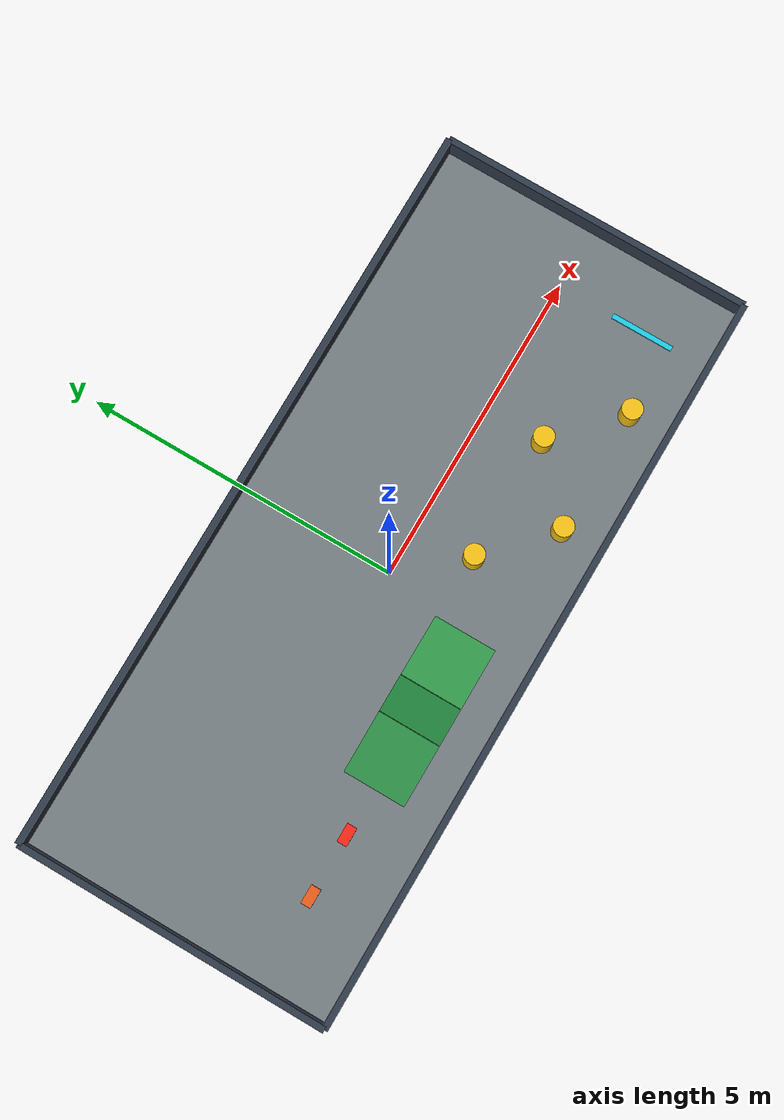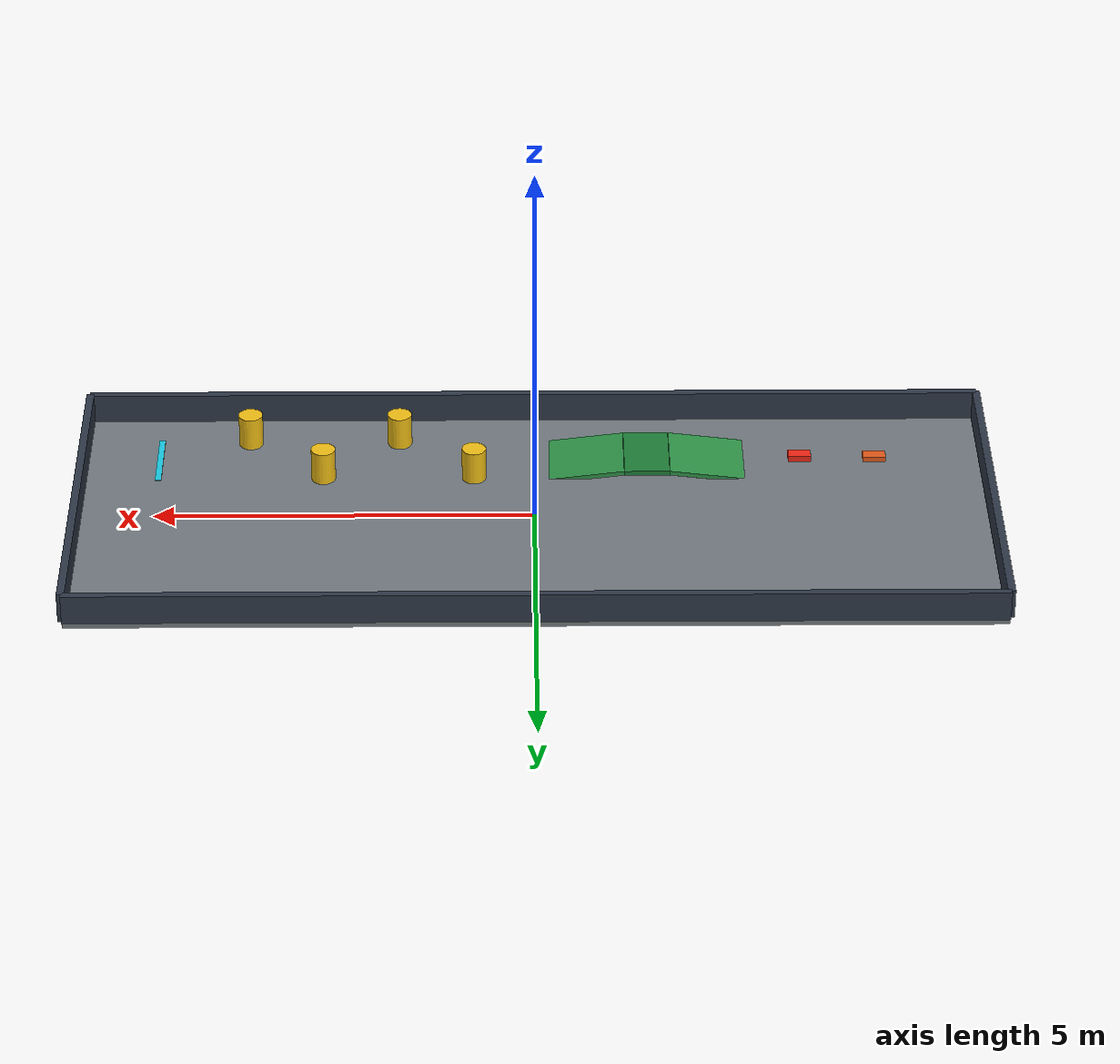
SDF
<?xml version="1.0"?>
<sdf version="1.10">
  <world name="hexapod_training_course">
    <physics name="default" type="ignored">
      <max_step_size>0.001</max_step_size>
      <real_time_factor>1.0</real_time_factor>
    </physics>
    <gravity>0 0 -9.80665</gravity>
    <plugin filename="gz-sim-physics-system" name="gz::sim::systems::Physics"/>
    <plugin filename="gz-sim-user-commands-system" name="gz::sim::systems::UserCommands"/>
    <plugin filename="gz-sim-scene-broadcaster-system" name="gz::sim::systems::SceneBroadcaster"/>
    <plugin filename="gz-sim-sensors-system" name="gz::sim::systems::Sensors">
      <render_engine>ogre2</render_engine>
    </plugin>
    <plugin filename="gz-sim-imu-system" name="gz::sim::systems::Imu"/>
    <!-- Contact system: needed for the six foot contact sensors (limit-switch emulation) in hexapod_description -->
    <plugin filename="gz-sim-contact-system" name="gz::sim::systems::Contact"/>
    <!-- ForceTorque system: joint torque sensors (use_joint_ft in hexapod_description, CoT in hexapod_evaluation) -->
    <plugin filename="gz-sim-forcetorque-system" name="gz::sim::systems::ForceTorque"/>

    <scene>
      <ambient>0.55 0.55 0.55 1</ambient>
      <background>0.72 0.82 0.92 1</background>
      <shadows>true</shadows>
    </scene>
    <light name="sun" type="directional">
      <pose>0 0 10 0 0 0</pose>
      <cast_shadows>true</cast_shadows>
      <direction>-0.4 0.2 -0.9</direction>
      <diffuse>0.9 0.9 0.9 1</diffuse>
    </light>

    <!-- The box is centred at z=-0.05, keeping its top surface at z=0. -->
    <model name="ground">
      <static>true</static>
      <pose>0 0 -0.05 0 0 0</pose>
      <link name="link">
        <collision name="collision">
          <geometry><box><size>12 5 0.1</size></box></geometry>
          <surface><friction><ode><mu>1.0</mu><mu2>1.0</mu2></ode></friction></surface>
        </collision>
        <visual name="visual">
          <geometry><box><size>12 5 0.1</size></box></geometry>
          <material><diffuse>0.45 0.48 0.50 1</diffuse></material>
        </visual>
      </link>
    </model>

    <model name="boundary_walls">
      <static>true</static>
      <link name="walls">
        <collision name="north"><pose>0 2.5 0.2 0 0 0</pose><geometry><box><size>12 0.1 0.4</size></box></geometry></collision>
        <visual name="north_visual"><pose>0 2.5 0.2 0 0 0</pose><geometry><box><size>12 0.1 0.4</size></box></geometry><material><diffuse>0.18 0.22 0.28 1</diffuse></material></visual>
        <collision name="south"><pose>0 -2.5 0.2 0 0 0</pose><geometry><box><size>12 0.1 0.4</size></box></geometry></collision>
        <visual name="south_visual"><pose>0 -2.5 0.2 0 0 0</pose><geometry><box><size>12 0.1 0.4</size></box></geometry><material><diffuse>0.18 0.22 0.28 1</diffuse></material></visual>
        <collision name="east"><pose>6 0 0.2 0 0 0</pose><geometry><box><size>0.1 5 0.4</size></box></geometry></collision>
        <visual name="east_visual"><pose>6 0 0.2 0 0 0</pose><geometry><box><size>0.1 5 0.4</size></box></geometry><material><diffuse>0.18 0.22 0.28 1</diffuse></material></visual>
        <collision name="west"><pose>-6 0 0.2 0 0 0</pose><geometry><box><size>0.1 5 0.4</size></box></geometry></collision>
        <visual name="west_visual"><pose>-6 0 0.2 0 0 0</pose><geometry><box><size>0.1 5 0.4</size></box></geometry><material><diffuse>0.18 0.22 0.28 1</diffuse></material></visual>
      </link>
    </model>

    <!-- Narrow centre obstacles pass between the feet and test body clearance. -->
    <model name="body_clearance_boxes">
      <static>true</static>
      <link name="boxes">
        <collision name="box_75mm"><pose>-4.55 -1.4 0.0375 0 0 0</pose><geometry><box><size>0.30 0.16 0.075</size></box></geometry></collision>
        <visual name="box_75mm_visual"><pose>-4.55 -1.4 0.0375 0 0 0</pose><geometry><box><size>0.30 0.16 0.075</size></box></geometry><material><diffuse>0.90 0.35 0.10 1</diffuse></material></visual>
        <collision name="box_90mm"><pose>-3.55 -1.4 0.045 0 0 0</pose><geometry><box><size>0.30 0.16 0.09</size></box></geometry></collision>
        <visual name="box_90mm_visual"><pose>-3.55 -1.4 0.045 0 0 0</pose><geometry><box><size>0.30 0.16 0.09</size></box></geometry><material><diffuse>0.95 0.15 0.08 1</diffuse></material></visual>
      </link>
    </model>

    <!-- 1 m ramps rise 0.12 m (6.84 degrees), with a 0.6 m top platform. -->
    <model name="slope_module">
      <static>true</static>
      <link name="ramps">
        <collision name="ramp_up"><pose>-2.3 -1.4 0.0302 0 -0.11943 0</pose><geometry><box><size>1.0 1.0 0.06</size></box></geometry><surface><friction><ode><mu>1.2</mu><mu2>1.2</mu2></ode></friction></surface></collision>
        <visual name="ramp_up_visual"><pose>-2.3 -1.4 0.0302 0 -0.11943 0</pose><geometry><box><size>1.0 1.0 0.06</size></box></geometry><material><diffuse>0.18 0.58 0.28 1</diffuse></material></visual>
        <collision name="platform"><pose>-1.5 -1.4 0.09 0 0 0</pose><geometry><box><size>0.6 1.0 0.06</size></box></geometry><surface><friction><ode><mu>1.2</mu><mu2>1.2</mu2></ode></friction></surface></collision>
        <visual name="platform_visual"><pose>-1.5 -1.4 0.09 0 0 0</pose><geometry><box><size>0.6 1.0 0.06</size></box></geometry><material><diffuse>0.12 0.50 0.22 1</diffuse></material></visual>
        <collision name="ramp_down"><pose>-0.7 -1.4 0.0302 0 0.11943 0</pose><geometry><box><size>1.0 1.0 0.06</size></box></geometry><surface><friction><ode><mu>1.2</mu><mu2>1.2</mu2></ode></friction></surface></collision>
        <visual name="ramp_down_visual"><pose>-0.7 -1.4 0.0302 0 0.11943 0</pose><geometry><box><size>1.0 1.0 0.06</size></box></geometry><material><diffuse>0.18 0.58 0.28 1</diffuse></material></visual>
      </link>
    </model>

    <!-- Alternating pylons form a compact slalom after the slope. -->
    <model name="zigzag_pylons">
      <static>true</static>
      <link name="pylons">
        <collision name="pylon_1"><pose>0.8 -0.95 0.225 0 0 0</pose><geometry><cylinder><radius>0.16</radius><length>0.45</length></cylinder></geometry></collision>
        <visual name="pylon_1_visual"><pose>0.8 -0.95 0.225 0 0 0</pose><geometry><cylinder><radius>0.16</radius><length>0.45</length></cylinder></geometry><material><diffuse>0.95 0.75 0.08 1</diffuse></material></visual>
        <collision name="pylon_2"><pose>1.8 -1.85 0.225 0 0 0</pose><geometry><cylinder><radius>0.16</radius><length>0.45</length></cylinder></geometry></collision>
        <visual name="pylon_2_visual"><pose>1.8 -1.85 0.225 0 0 0</pose><geometry><cylinder><radius>0.16</radius><length>0.45</length></cylinder></geometry><material><diffuse>0.95 0.75 0.08 1</diffuse></material></visual>
        <collision name="pylon_3"><pose>2.8 -0.95 0.225 0 0 0</pose><geometry><cylinder><radius>0.16</radius><length>0.45</length></cylinder></geometry></collision>
        <visual name="pylon_3_visual"><pose>2.8 -0.95 0.225 0 0 0</pose><geometry><cylinder><radius>0.16</radius><length>0.45</length></cylinder></geometry><material><diffuse>0.95 0.75 0.08 1</diffuse></material></visual>
        <collision name="pylon_4"><pose>3.8 -1.85 0.225 0 0 0</pose><geometry><cylinder><radius>0.16</radius><length>0.45</length></cylinder></geometry></collision>
        <visual name="pylon_4_visual"><pose>3.8 -1.85 0.225 0 0 0</pose><geometry><cylinder><radius>0.16</radius><length>0.45</length></cylinder></geometry><material><diffuse>0.95 0.75 0.08 1</diffuse></material></visual>
      </link>
    </model>

    <model name="finish_marker">
      <static>true</static>
      <pose>5.0 -1.4 0.01 0 0 0</pose>
      <link name="link">
        <visual name="visual"><geometry><box><size>0.08 1.0 0.02</size></box></geometry><material><diffuse>0.1 0.8 0.9 1</diffuse></material></visual>
      </link>
    </model>
  </world>
</sdf>
